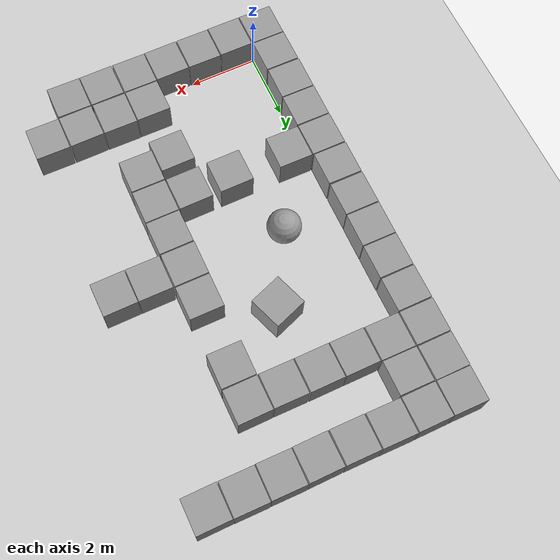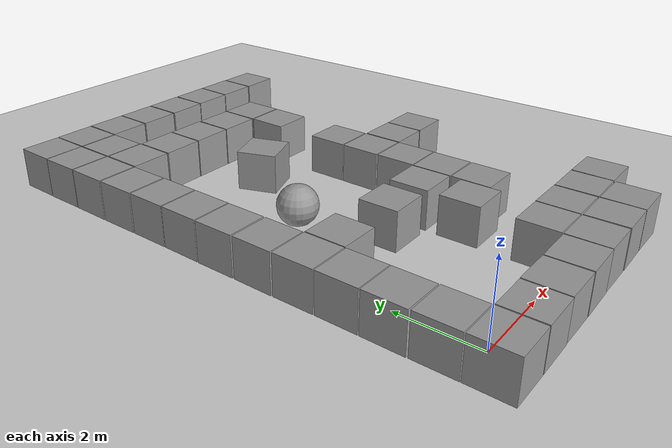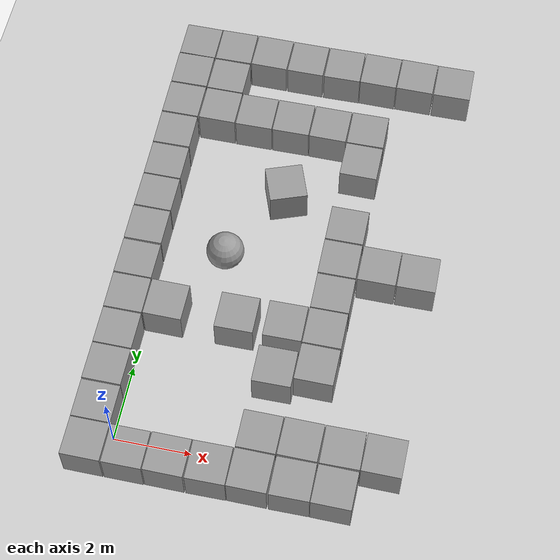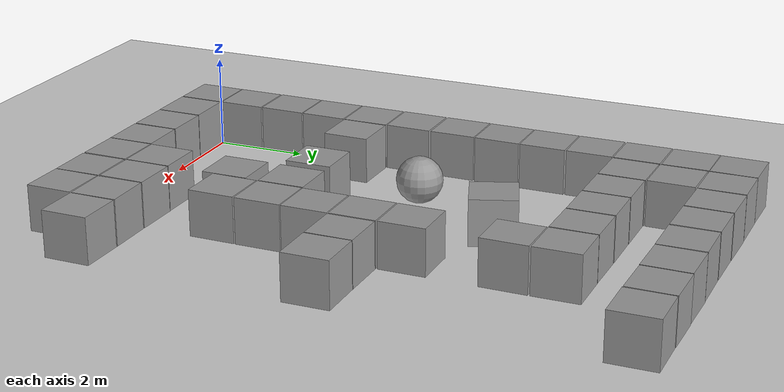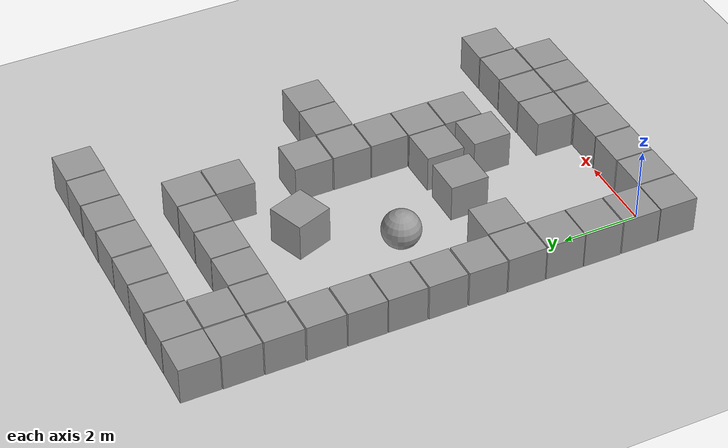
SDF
<sdf version="1.6">
 <world name="tight_mix">
  <include><uri>model://ground_plane</uri></include>
  <include><uri>model://sun</uri></include>
  <model name="unit_box_0">
   <pose>-0.4964 -0.5021 0.5 0 0 -0.00544</pose>
   <link name="link">
    <inertial>
     <mass>1</mass>
     <inertia>
      <ixx>0.166667</ixx>
      <ixy>0</ixy>
      <ixz>0</ixz>
      <iyy>0.166667</iyy>
      <iyz>0</iyz>
      <izz>0.166667</izz>
     </inertia>
    </inertial>
    <collision name="collision"><geometry><box><size>1 1 1</size></box></geometry></collision>
    <visual name="visual">
     <geometry><box><size>1 1 1</size></box></geometry>
     <material>
      <script><uri>file://media/materials/scripts/gazebo.material</uri><name>Gazebo/Grey</name></script>
     </material>
    </visual>
   </link>
  </model>
  <model name="unit_box_1">
   <pose>0.5339 -0.5046 0.5 0 0 -0.00050</pose>
   <link name="link">
    <inertial>
     <mass>1</mass>
     <inertia>
      <ixx>0.166667</ixx>
      <ixy>0</ixy>
      <ixz>0</ixz>
      <iyy>0.166667</iyy>
      <iyz>0</iyz>
      <izz>0.166667</izz>
     </inertia>
    </inertial>
    <collision name="collision"><geometry><box><size>1 1 1</size></box></geometry></collision>
    <visual name="visual">
     <geometry><box><size>1 1 1</size></box></geometry>
     <material>
      <script><uri>file://media/materials/scripts/gazebo.material</uri><name>Gazebo/Grey</name></script>
     </material>
    </visual>
   </link>
  </model>
  <model name="unit_box_2">
   <pose>1.5607 -0.4987 0.5 0 0 -0.00743</pose>
   <link name="link">
    <inertial>
     <mass>1</mass>
     <inertia>
      <ixx>0.166667</ixx>
      <ixy>0</ixy>
      <ixz>0</ixz>
      <iyy>0.166667</iyy>
      <iyz>0</iyz>
      <izz>0.166667</izz>
     </inertia>
    </inertial>
    <collision name="collision"><geometry><box><size>1 1 1</size></box></geometry></collision>
    <visual name="visual">
     <geometry><box><size>1 1 1</size></box></geometry>
     <material>
      <script><uri>file://media/materials/scripts/gazebo.material</uri><name>Gazebo/Grey</name></script>
     </material>
    </visual>
   </link>
  </model>
  <model name="unit_box_3">
   <pose>2.5916 -0.5000 0.5 0 0 0.00735</pose>
   <link name="link">
    <inertial>
     <mass>1</mass>
     <inertia>
      <ixx>0.166667</ixx>
      <ixy>0</ixy>
      <ixz>0</ixz>
      <iyy>0.166667</iyy>
      <iyz>0</iyz>
      <izz>0.166667</izz>
     </inertia>
    </inertial>
    <collision name="collision"><geometry><box><size>1 1 1</size></box></geometry></collision>
    <visual name="visual">
     <geometry><box><size>1 1 1</size></box></geometry>
     <material>
      <script><uri>file://media/materials/scripts/gazebo.material</uri><name>Gazebo/Grey</name></script>
     </material>
    </visual>
   </link>
  </model>
  <model name="unit_box_4">
   <pose>3.6143 -0.4945 0.5 0 0 -0.00686</pose>
   <link name="link">
    <inertial>
     <mass>1</mass>
     <inertia>
      <ixx>0.166667</ixx>
      <ixy>0</ixy>
      <ixz>0</ixz>
      <iyy>0.166667</iyy>
      <iyz>0</iyz>
      <izz>0.166667</izz>
     </inertia>
    </inertial>
    <collision name="collision"><geometry><box><size>1 1 1</size></box></geometry></collision>
    <visual name="visual">
     <geometry><box><size>1 1 1</size></box></geometry>
     <material>
      <script><uri>file://media/materials/scripts/gazebo.material</uri><name>Gazebo/Grey</name></script>
     </material>
    </visual>
   </link>
  </model>
  <model name="unit_box_5">
   <pose>4.6538 -0.4999 0.5 0 0 0.00703</pose>
   <link name="link">
    <inertial>
     <mass>1</mass>
     <inertia>
      <ixx>0.166667</ixx>
      <ixy>0</ixy>
      <ixz>0</ixz>
      <iyy>0.166667</iyy>
      <iyz>0</iyz>
      <izz>0.166667</izz>
     </inertia>
    </inertial>
    <collision name="collision"><geometry><box><size>1 1 1</size></box></geometry></collision>
    <visual name="visual">
     <geometry><box><size>1 1 1</size></box></geometry>
     <material>
      <script><uri>file://media/materials/scripts/gazebo.material</uri><name>Gazebo/Grey</name></script>
     </material>
    </visual>
   </link>
  </model>
  <model name="unit_box_6">
   <pose>5.6762 -0.5021 0.5 0 0 -0.00865</pose>
   <link name="link">
    <inertial>
     <mass>1</mass>
     <inertia>
      <ixx>0.166667</ixx>
      <ixy>0</ixy>
      <ixz>0</ixz>
      <iyy>0.166667</iyy>
      <iyz>0</iyz>
      <izz>0.166667</izz>
     </inertia>
    </inertial>
    <collision name="collision"><geometry><box><size>1 1 1</size></box></geometry></collision>
    <visual name="visual">
     <geometry><box><size>1 1 1</size></box></geometry>
     <material>
      <script><uri>file://media/materials/scripts/gazebo.material</uri><name>Gazebo/Grey</name></script>
     </material>
    </visual>
   </link>
  </model>
  <model name="unit_box_17">
   <pose>-0.4946 11.8604 0.5 0 0 -0.00588</pose>
   <link name="link">
    <inertial>
     <mass>1</mass>
     <inertia>
      <ixx>0.166667</ixx>
      <ixy>0</ixy>
      <ixz>0</ixz>
      <iyy>0.166667</iyy>
      <iyz>0</iyz>
      <izz>0.166667</izz>
     </inertia>
    </inertial>
    <collision name="collision"><geometry><box><size>1 1 1</size></box></geometry></collision>
    <visual name="visual">
     <geometry><box><size>1 1 1</size></box></geometry>
     <material>
      <script><uri>file://media/materials/scripts/gazebo.material</uri><name>Gazebo/Grey</name></script>
     </material>
    </visual>
   </link>
  </model>
  <model name="unit_box_18">
   <pose>0.5297 11.8629 0.5 0 0 0.00562</pose>
   <link name="link">
    <inertial>
     <mass>1</mass>
     <inertia>
      <ixx>0.166667</ixx>
      <ixy>0</ixy>
      <ixz>0</ixz>
      <iyy>0.166667</iyy>
      <iyz>0</iyz>
      <izz>0.166667</izz>
     </inertia>
    </inertial>
    <collision name="collision"><geometry><box><size>1 1 1</size></box></geometry></collision>
    <visual name="visual">
     <geometry><box><size>1 1 1</size></box></geometry>
     <material>
      <script><uri>file://media/materials/scripts/gazebo.material</uri><name>Gazebo/Grey</name></script>
     </material>
    </visual>
   </link>
  </model>
  <model name="unit_box_19">
   <pose>1.5586 11.8654 0.5 0 0 -0.00974</pose>
   <link name="link">
    <inertial>
     <mass>1</mass>
     <inertia>
      <ixx>0.166667</ixx>
      <ixy>0</ixy>
      <ixz>0</ixz>
      <iyy>0.166667</iyy>
      <iyz>0</iyz>
      <izz>0.166667</izz>
     </inertia>
    </inertial>
    <collision name="collision"><geometry><box><size>1 1 1</size></box></geometry></collision>
    <visual name="visual">
     <geometry><box><size>1 1 1</size></box></geometry>
     <material>
      <script><uri>file://media/materials/scripts/gazebo.material</uri><name>Gazebo/Grey</name></script>
     </material>
    </visual>
   </link>
  </model>
  <model name="unit_box_20">
   <pose>2.5899 11.8545 0.5 0 0 -0.00297</pose>
   <link name="link">
    <inertial>
     <mass>1</mass>
     <inertia>
      <ixx>0.166667</ixx>
      <ixy>0</ixy>
      <ixz>0</ixz>
      <iyy>0.166667</iyy>
      <iyz>0</iyz>
      <izz>0.166667</izz>
     </inertia>
    </inertial>
    <collision name="collision"><geometry><box><size>1 1 1</size></box></geometry></collision>
    <visual name="visual">
     <geometry><box><size>1 1 1</size></box></geometry>
     <material>
      <script><uri>file://media/materials/scripts/gazebo.material</uri><name>Gazebo/Grey</name></script>
     </material>
    </visual>
   </link>
  </model>
  <model name="unit_box_21">
   <pose>3.6259 11.8554 0.5 0 0 0.01017</pose>
   <link name="link">
    <inertial>
     <mass>1</mass>
     <inertia>
      <ixx>0.166667</ixx>
      <ixy>0</ixy>
      <ixz>0</ixz>
      <iyy>0.166667</iyy>
      <iyz>0</iyz>
      <izz>0.166667</izz>
     </inertia>
    </inertial>
    <collision name="collision"><geometry><box><size>1 1 1</size></box></geometry></collision>
    <visual name="visual">
     <geometry><box><size>1 1 1</size></box></geometry>
     <material>
      <script><uri>file://media/materials/scripts/gazebo.material</uri><name>Gazebo/Grey</name></script>
     </material>
    </visual>
   </link>
  </model>
  <model name="unit_box_22">
   <pose>4.6549 11.8623 0.5 0 0 -0.00930</pose>
   <link name="link">
    <inertial>
     <mass>1</mass>
     <inertia>
      <ixx>0.166667</ixx>
      <ixy>0</ixy>
      <ixz>0</ixz>
      <iyy>0.166667</iyy>
      <iyz>0</iyz>
      <izz>0.166667</izz>
     </inertia>
    </inertial>
    <collision name="collision"><geometry><box><size>1 1 1</size></box></geometry></collision>
    <visual name="visual">
     <geometry><box><size>1 1 1</size></box></geometry>
     <material>
      <script><uri>file://media/materials/scripts/gazebo.material</uri><name>Gazebo/Grey</name></script>
     </material>
    </visual>
   </link>
  </model>
  <model name="unit_box_23">
   <pose>5.6797 11.8623 0.5 0 0 -0.00848</pose>
   <link name="link">
    <inertial>
     <mass>1</mass>
     <inertia>
      <ixx>0.166667</ixx>
      <ixy>0</ixy>
      <ixz>0</ixz>
      <iyy>0.166667</iyy>
      <iyz>0</iyz>
      <izz>0.166667</izz>
     </inertia>
    </inertial>
    <collision name="collision"><geometry><box><size>1 1 1</size></box></geometry></collision>
    <visual name="visual">
     <geometry><box><size>1 1 1</size></box></geometry>
     <material>
      <script><uri>file://media/materials/scripts/gazebo.material</uri><name>Gazebo/Grey</name></script>
     </material>
    </visual>
   </link>
  </model>
  <model name="unit_box_24">
   <pose>6.7076 11.8551 0.5 0 0 0.00719</pose>
   <link name="link">
    <inertial>
     <mass>1</mass>
     <inertia>
      <ixx>0.166667</ixx>
      <ixy>0</ixy>
      <ixz>0</ixz>
      <iyy>0.166667</iyy>
      <iyz>0</iyz>
      <izz>0.166667</izz>
     </inertia>
    </inertial>
    <collision name="collision"><geometry><box><size>1 1 1</size></box></geometry></collision>
    <visual name="visual">
     <geometry><box><size>1 1 1</size></box></geometry>
     <material>
      <script><uri>file://media/materials/scripts/gazebo.material</uri><name>Gazebo/Grey</name></script>
     </material>
    </visual>
   </link>
  </model>
  <model name="unit_box_34">
   <pose>-0.4975 0.5212 0.5 0 0 -0.00022</pose>
   <link name="link">
    <inertial>
     <mass>1</mass>
     <inertia>
      <ixx>0.166667</ixx>
      <ixy>0</ixy>
      <ixz>0</ixz>
      <iyy>0.166667</iyy>
      <iyz>0</iyz>
      <izz>0.166667</izz>
     </inertia>
    </inertial>
    <collision name="collision"><geometry><box><size>1 1 1</size></box></geometry></collision>
    <visual name="visual">
     <geometry><box><size>1 1 1</size></box></geometry>
     <material>
      <script><uri>file://media/materials/scripts/gazebo.material</uri><name>Gazebo/Grey</name></script>
     </material>
    </visual>
   </link>
  </model>
  <model name="unit_box_35">
   <pose>-0.5028 1.5561 0.5 0 0 -0.00831</pose>
   <link name="link">
    <inertial>
     <mass>1</mass>
     <inertia>
      <ixx>0.166667</ixx>
      <ixy>0</ixy>
      <ixz>0</ixz>
      <iyy>0.166667</iyy>
      <iyz>0</iyz>
      <izz>0.166667</izz>
     </inertia>
    </inertial>
    <collision name="collision"><geometry><box><size>1 1 1</size></box></geometry></collision>
    <visual name="visual">
     <geometry><box><size>1 1 1</size></box></geometry>
     <material>
      <script><uri>file://media/materials/scripts/gazebo.material</uri><name>Gazebo/Grey</name></script>
     </material>
    </visual>
   </link>
  </model>
  <model name="unit_box_36">
   <pose>-0.4985 2.5815 0.5 0 0 -0.00469</pose>
   <link name="link">
    <inertial>
     <mass>1</mass>
     <inertia>
      <ixx>0.166667</ixx>
      <ixy>0</ixy>
      <ixz>0</ixz>
      <iyy>0.166667</iyy>
      <iyz>0</iyz>
      <izz>0.166667</izz>
     </inertia>
    </inertial>
    <collision name="collision"><geometry><box><size>1 1 1</size></box></geometry></collision>
    <visual name="visual">
     <geometry><box><size>1 1 1</size></box></geometry>
     <material>
      <script><uri>file://media/materials/scripts/gazebo.material</uri><name>Gazebo/Grey</name></script>
     </material>
    </visual>
   </link>
  </model>
  <model name="unit_box_37">
   <pose>-0.5006 3.6123 0.5 0 0 0.00192</pose>
   <link name="link">
    <inertial>
     <mass>1</mass>
     <inertia>
      <ixx>0.166667</ixx>
      <ixy>0</ixy>
      <ixz>0</ixz>
      <iyy>0.166667</iyy>
      <iyz>0</iyz>
      <izz>0.166667</izz>
     </inertia>
    </inertial>
    <collision name="collision"><geometry><box><size>1 1 1</size></box></geometry></collision>
    <visual name="visual">
     <geometry><box><size>1 1 1</size></box></geometry>
     <material>
      <script><uri>file://media/materials/scripts/gazebo.material</uri><name>Gazebo/Grey</name></script>
     </material>
    </visual>
   </link>
  </model>
  <model name="unit_box_38">
   <pose>-0.5052 4.6422 0.5 0 0 -0.00751</pose>
   <link name="link">
    <inertial>
     <mass>1</mass>
     <inertia>
      <ixx>0.166667</ixx>
      <ixy>0</ixy>
      <ixz>0</ixz>
      <iyy>0.166667</iyy>
      <iyz>0</iyz>
      <izz>0.166667</izz>
     </inertia>
    </inertial>
    <collision name="collision"><geometry><box><size>1 1 1</size></box></geometry></collision>
    <visual name="visual">
     <geometry><box><size>1 1 1</size></box></geometry>
     <material>
      <script><uri>file://media/materials/scripts/gazebo.material</uri><name>Gazebo/Grey</name></script>
     </material>
    </visual>
   </link>
  </model>
  <model name="unit_box_39">
   <pose>-0.5049 5.6845 0.5 0 0 0.00022</pose>
   <link name="link">
    <inertial>
     <mass>1</mass>
     <inertia>
      <ixx>0.166667</ixx>
      <ixy>0</ixy>
      <ixz>0</ixz>
      <iyy>0.166667</iyy>
      <iyz>0</iyz>
      <izz>0.166667</izz>
     </inertia>
    </inertial>
    <collision name="collision"><geometry><box><size>1 1 1</size></box></geometry></collision>
    <visual name="visual">
     <geometry><box><size>1 1 1</size></box></geometry>
     <material>
      <script><uri>file://media/materials/scripts/gazebo.material</uri><name>Gazebo/Grey</name></script>
     </material>
    </visual>
   </link>
  </model>
  <model name="unit_box_40">
   <pose>-0.4979 6.7153 0.5 0 0 -0.00701</pose>
   <link name="link">
    <inertial>
     <mass>1</mass>
     <inertia>
      <ixx>0.166667</ixx>
      <ixy>0</ixy>
      <ixz>0</ixz>
      <iyy>0.166667</iyy>
      <iyz>0</iyz>
      <izz>0.166667</izz>
     </inertia>
    </inertial>
    <collision name="collision"><geometry><box><size>1 1 1</size></box></geometry></collision>
    <visual name="visual">
     <geometry><box><size>1 1 1</size></box></geometry>
     <material>
      <script><uri>file://media/materials/scripts/gazebo.material</uri><name>Gazebo/Grey</name></script>
     </material>
    </visual>
   </link>
  </model>
  <model name="unit_box_41">
   <pose>-0.4946 7.7426 0.5 0 0 -0.00083</pose>
   <link name="link">
    <inertial>
     <mass>1</mass>
     <inertia>
      <ixx>0.166667</ixx>
      <ixy>0</ixy>
      <ixz>0</ixz>
      <iyy>0.166667</iyy>
      <iyz>0</iyz>
      <izz>0.166667</izz>
     </inertia>
    </inertial>
    <collision name="collision"><geometry><box><size>1 1 1</size></box></geometry></collision>
    <visual name="visual">
     <geometry><box><size>1 1 1</size></box></geometry>
     <material>
      <script><uri>file://media/materials/scripts/gazebo.material</uri><name>Gazebo/Grey</name></script>
     </material>
    </visual>
   </link>
  </model>
  <model name="unit_box_42">
   <pose>-0.5001 8.7783 0.5 0 0 0.00562</pose>
   <link name="link">
    <inertial>
     <mass>1</mass>
     <inertia>
      <ixx>0.166667</ixx>
      <ixy>0</ixy>
      <ixz>0</ixz>
      <iyy>0.166667</iyy>
      <iyz>0</iyz>
      <izz>0.166667</izz>
     </inertia>
    </inertial>
    <collision name="collision"><geometry><box><size>1 1 1</size></box></geometry></collision>
    <visual name="visual">
     <geometry><box><size>1 1 1</size></box></geometry>
     <material>
      <script><uri>file://media/materials/scripts/gazebo.material</uri><name>Gazebo/Grey</name></script>
     </material>
    </visual>
   </link>
  </model>
  <model name="unit_box_43">
   <pose>-0.5037 9.8119 0.5 0 0 -0.00151</pose>
   <link name="link">
    <inertial>
     <mass>1</mass>
     <inertia>
      <ixx>0.166667</ixx>
      <ixy>0</ixy>
      <ixz>0</ixz>
      <iyy>0.166667</iyy>
      <iyz>0</iyz>
      <izz>0.166667</izz>
     </inertia>
    </inertial>
    <collision name="collision"><geometry><box><size>1 1 1</size></box></geometry></collision>
    <visual name="visual">
     <geometry><box><size>1 1 1</size></box></geometry>
     <material>
      <script><uri>file://media/materials/scripts/gazebo.material</uri><name>Gazebo/Grey</name></script>
     </material>
    </visual>
   </link>
  </model>
  <model name="unit_box_44">
   <pose>-0.5030 10.8444 0.5 0 0 0.00779</pose>
   <link name="link">
    <inertial>
     <mass>1</mass>
     <inertia>
      <ixx>0.166667</ixx>
      <ixy>0</ixy>
      <ixz>0</ixz>
      <iyy>0.166667</iyy>
      <iyz>0</iyz>
      <izz>0.166667</izz>
     </inertia>
    </inertial>
    <collision name="collision"><geometry><box><size>1 1 1</size></box></geometry></collision>
    <visual name="visual">
     <geometry><box><size>1 1 1</size></box></geometry>
     <material>
      <script><uri>file://media/materials/scripts/gazebo.material</uri><name>Gazebo/Grey</name></script>
     </material>
    </visual>
   </link>
  </model>
  <model name="unit_box_56">
   <pose>3.6217 0.5339 0.5 0 0 -0.00480</pose>
   <link name="link">
    <inertial>
     <mass>1</mass>
     <inertia>
      <ixx>0.166667</ixx>
      <ixy>0</ixy>
      <ixz>0</ixz>
      <iyy>0.166667</iyy>
      <iyz>0</iyz>
      <izz>0.166667</izz>
     </inertia>
    </inertial>
    <collision name="collision"><geometry><box><size>1 1 1</size></box></geometry></collision>
    <visual name="visual">
     <geometry><box><size>1 1 1</size></box></geometry>
     <material>
      <script><uri>file://media/materials/scripts/gazebo.material</uri><name>Gazebo/Grey</name></script>
     </material>
    </visual>
   </link>
  </model>
  <model name="unit_box_57">
   <pose>4.6459 0.5356 0.5 0 0 -0.00921</pose>
   <link name="link">
    <inertial>
     <mass>1</mass>
     <inertia>
      <ixx>0.166667</ixx>
      <ixy>0</ixy>
      <ixz>0</ixz>
      <iyy>0.166667</iyy>
      <iyz>0</iyz>
      <izz>0.166667</izz>
     </inertia>
    </inertial>
    <collision name="collision"><geometry><box><size>1 1 1</size></box></geometry></collision>
    <visual name="visual">
     <geometry><box><size>1 1 1</size></box></geometry>
     <material>
      <script><uri>file://media/materials/scripts/gazebo.material</uri><name>Gazebo/Grey</name></script>
     </material>
    </visual>
   </link>
  </model>
  <model name="unit_box_58">
   <pose>5.6802 0.5315 0.5 0 0 0.00953</pose>
   <link name="link">
    <inertial>
     <mass>1</mass>
     <inertia>
      <ixx>0.166667</ixx>
      <ixy>0</ixy>
      <ixz>0</ixz>
      <iyy>0.166667</iyy>
      <iyz>0</iyz>
      <izz>0.166667</izz>
     </inertia>
    </inertial>
    <collision name="collision"><geometry><box><size>1 1 1</size></box></geometry></collision>
    <visual name="visual">
     <geometry><box><size>1 1 1</size></box></geometry>
     <material>
      <script><uri>file://media/materials/scripts/gazebo.material</uri><name>Gazebo/Grey</name></script>
     </material>
    </visual>
   </link>
  </model>
  <model name="unit_box_59">
   <pose>6.7050 0.5324 0.5 0 0 -0.00882</pose>
   <link name="link">
    <inertial>
     <mass>1</mass>
     <inertia>
      <ixx>0.166667</ixx>
      <ixy>0</ixy>
      <ixz>0</ixz>
      <iyy>0.166667</iyy>
      <iyz>0</iyz>
      <izz>0.166667</izz>
     </inertia>
    </inertial>
    <collision name="collision"><geometry><box><size>1 1 1</size></box></geometry></collision>
    <visual name="visual">
     <geometry><box><size>1 1 1</size></box></geometry>
     <material>
      <script><uri>file://media/materials/scripts/gazebo.material</uri><name>Gazebo/Grey</name></script>
     </material>
    </visual>
   </link>
  </model>
  <model name="unit_box_60">
   <pose>3.6194 2.3314 0.5 0 0 0.00731</pose>
   <link name="link">
    <inertial>
     <mass>1</mass>
     <inertia>
      <ixx>0.166667</ixx>
      <ixy>0</ixy>
      <ixz>0</ixz>
      <iyy>0.166667</iyy>
      <iyz>0</iyz>
      <izz>0.166667</izz>
     </inertia>
    </inertial>
    <collision name="collision"><geometry><box><size>1 1 1</size></box></geometry></collision>
    <visual name="visual">
     <geometry><box><size>1 1 1</size></box></geometry>
     <material>
      <script><uri>file://media/materials/scripts/gazebo.material</uri><name>Gazebo/Grey</name></script>
     </material>
    </visual>
   </link>
  </model>
  <model name="unit_box_61">
   <pose>4.6446 2.5930 0.5 0 0 -0.00735</pose>
   <link name="link">
    <inertial>
     <mass>1</mass>
     <inertia>
      <ixx>0.166667</ixx>
      <ixy>0</ixy>
      <ixz>0</ixz>
      <iyy>0.166667</iyy>
      <iyz>0</iyz>
      <izz>0.166667</izz>
     </inertia>
    </inertial>
    <collision name="collision"><geometry><box><size>1 1 1</size></box></geometry></collision>
    <visual name="visual">
     <geometry><box><size>1 1 1</size></box></geometry>
     <material>
      <script><uri>file://media/materials/scripts/gazebo.material</uri><name>Gazebo/Grey</name></script>
     </material>
    </visual>
   </link>
  </model>
  <model name="unit_box_63">
   <pose>0.5249 3.6141 0.5 0 0 -0.00981</pose>
   <link name="link">
    <inertial>
     <mass>1</mass>
     <inertia>
      <ixx>0.166667</ixx>
      <ixy>0</ixy>
      <ixz>0</ixz>
      <iyy>0.166667</iyy>
      <iyz>0</iyz>
      <izz>0.166667</izz>
     </inertia>
    </inertial>
    <collision name="collision"><geometry><box><size>1 1 1</size></box></geometry></collision>
    <visual name="visual">
     <geometry><box><size>1 1 1</size></box></geometry>
     <material>
      <script><uri>file://media/materials/scripts/gazebo.material</uri><name>Gazebo/Grey</name></script>
     </material>
    </visual>
   </link>
  </model>
  <model name="unit_box_64">
   <pose>2.3734 3.6145 0.5 0 0 0.00597</pose>
   <link name="link">
    <inertial>
     <mass>1</mass>
     <inertia>
      <ixx>0.166667</ixx>
      <ixy>0</ixy>
      <ixz>0</ixz>
      <iyy>0.166667</iyy>
      <iyz>0</iyz>
      <izz>0.166667</izz>
     </inertia>
    </inertial>
    <collision name="collision"><geometry><box><size>1 1 1</size></box></geometry></collision>
    <visual name="visual">
     <geometry><box><size>1 1 1</size></box></geometry>
     <material>
      <script><uri>file://media/materials/scripts/gazebo.material</uri><name>Gazebo/Grey</name></script>
     </material>
    </visual>
   </link>
  </model>
  <model name="unit_box_65">
   <pose>3.6237 3.6238 0.5 0 0 0.00915</pose>
   <link name="link">
    <inertial>
     <mass>1</mass>
     <inertia>
      <ixx>0.166667</ixx>
      <ixy>0</ixy>
      <ixz>0</ixz>
      <iyy>0.166667</iyy>
      <iyz>0</iyz>
      <izz>0.166667</izz>
     </inertia>
    </inertial>
    <collision name="collision"><geometry><box><size>1 1 1</size></box></geometry></collision>
    <visual name="visual">
     <geometry><box><size>1 1 1</size></box></geometry>
     <material>
      <script><uri>file://media/materials/scripts/gazebo.material</uri><name>Gazebo/Grey</name></script>
     </material>
    </visual>
   </link>
  </model>
  <model name="unit_box_66">
   <pose>4.6516 3.6239 0.5 0 0 0.00090</pose>
   <link name="link">
    <inertial>
     <mass>1</mass>
     <inertia>
      <ixx>0.166667</ixx>
      <ixy>0</ixy>
      <ixz>0</ixz>
      <iyy>0.166667</iyy>
      <iyz>0</iyz>
      <izz>0.166667</izz>
     </inertia>
    </inertial>
    <collision name="collision"><geometry><box><size>1 1 1</size></box></geometry></collision>
    <visual name="visual">
     <geometry><box><size>1 1 1</size></box></geometry>
     <material>
      <script><uri>file://media/materials/scripts/gazebo.material</uri><name>Gazebo/Grey</name></script>
     </material>
    </visual>
   </link>
  </model>
  <model name="unit_box_68">
   <pose>4.6559 4.6487 0.5 0 0 0.00450</pose>
   <link name="link">
    <inertial>
     <mass>1</mass>
     <inertia>
      <ixx>0.166667</ixx>
      <ixy>0</ixy>
      <ixz>0</ixz>
      <iyy>0.166667</iyy>
      <iyz>0</iyz>
      <izz>0.166667</izz>
     </inertia>
    </inertial>
    <collision name="collision"><geometry><box><size>1 1 1</size></box></geometry></collision>
    <visual name="visual">
     <geometry><box><size>1 1 1</size></box></geometry>
     <material>
      <script><uri>file://media/materials/scripts/gazebo.material</uri><name>Gazebo/Grey</name></script>
     </material>
    </visual>
   </link>
  </model>
  <model name="unit_box_69">
   <pose>4.6461 5.6798 0.5 0 0 0.00087</pose>
   <link name="link">
    <inertial>
     <mass>1</mass>
     <inertia>
      <ixx>0.166667</ixx>
      <ixy>0</ixy>
      <ixz>0</ixz>
      <iyy>0.166667</iyy>
      <iyz>0</iyz>
      <izz>0.166667</izz>
     </inertia>
    </inertial>
    <collision name="collision"><geometry><box><size>1 1 1</size></box></geometry></collision>
    <visual name="visual">
     <geometry><box><size>1 1 1</size></box></geometry>
     <material>
      <script><uri>file://media/materials/scripts/gazebo.material</uri><name>Gazebo/Grey</name></script>
     </material>
    </visual>
   </link>
  </model>
  <model name="unit_box_70">
   <pose>5.6832 5.6779 0.5 0 0 -0.00065</pose>
   <link name="link">
    <inertial>
     <mass>1</mass>
     <inertia>
      <ixx>0.166667</ixx>
      <ixy>0</ixy>
      <ixz>0</ixz>
      <iyy>0.166667</iyy>
      <iyz>0</iyz>
      <izz>0.166667</izz>
     </inertia>
    </inertial>
    <collision name="collision"><geometry><box><size>1 1 1</size></box></geometry></collision>
    <visual name="visual">
     <geometry><box><size>1 1 1</size></box></geometry>
     <material>
      <script><uri>file://media/materials/scripts/gazebo.material</uri><name>Gazebo/Grey</name></script>
     </material>
    </visual>
   </link>
  </model>
  <model name="unit_box_71">
   <pose>6.7063 5.6809 0.5 0 0 0.00921</pose>
   <link name="link">
    <inertial>
     <mass>1</mass>
     <inertia>
      <ixx>0.166667</ixx>
      <ixy>0</ixy>
      <ixz>0</ixz>
      <iyy>0.166667</iyy>
      <iyz>0</iyz>
      <izz>0.166667</izz>
     </inertia>
    </inertial>
    <collision name="collision"><geometry><box><size>1 1 1</size></box></geometry></collision>
    <visual name="visual">
     <geometry><box><size>1 1 1</size></box></geometry>
     <material>
      <script><uri>file://media/materials/scripts/gazebo.material</uri><name>Gazebo/Grey</name></script>
     </material>
    </visual>
   </link>
  </model>
  <model name="unit_box_72">
   <pose>4.6486 6.7119 0.5 0 0 0.00119</pose>
   <link name="link">
    <inertial>
     <mass>1</mass>
     <inertia>
      <ixx>0.166667</ixx>
      <ixy>0</ixy>
      <ixz>0</ixz>
      <iyy>0.166667</iyy>
      <iyz>0</iyz>
      <izz>0.166667</izz>
     </inertia>
    </inertial>
    <collision name="collision"><geometry><box><size>1 1 1</size></box></geometry></collision>
    <visual name="visual">
     <geometry><box><size>1 1 1</size></box></geometry>
     <material>
      <script><uri>file://media/materials/scripts/gazebo.material</uri><name>Gazebo/Grey</name></script>
     </material>
    </visual>
   </link>
  </model>
  <model name="unit_box_73">
   <pose>4.6463 8.7724 0.5 0 0 -0.00604</pose>
   <link name="link">
    <inertial>
     <mass>1</mass>
     <inertia>
      <ixx>0.166667</ixx>
      <ixy>0</ixy>
      <ixz>0</ixz>
      <iyy>0.166667</iyy>
      <iyz>0</iyz>
      <izz>0.166667</izz>
     </inertia>
    </inertial>
    <collision name="collision"><geometry><box><size>1 1 1</size></box></geometry></collision>
    <visual name="visual">
     <geometry><box><size>1 1 1</size></box></geometry>
     <material>
      <script><uri>file://media/materials/scripts/gazebo.material</uri><name>Gazebo/Grey</name></script>
     </material>
    </visual>
   </link>
  </model>
  <model name="unit_box_74">
   <pose>0.5314 9.8059 0.5 0 0 -0.00405</pose>
   <link name="link">
    <inertial>
     <mass>1</mass>
     <inertia>
      <ixx>0.166667</ixx>
      <ixy>0</ixy>
      <ixz>0</ixz>
      <iyy>0.166667</iyy>
      <iyz>0</iyz>
      <izz>0.166667</izz>
     </inertia>
    </inertial>
    <collision name="collision"><geometry><box><size>1 1 1</size></box></geometry></collision>
    <visual name="visual">
     <geometry><box><size>1 1 1</size></box></geometry>
     <material>
      <script><uri>file://media/materials/scripts/gazebo.material</uri><name>Gazebo/Grey</name></script>
     </material>
    </visual>
   </link>
  </model>
  <model name="unit_box_75">
   <pose>1.5620 9.7981 0.5 0 0 0.00302</pose>
   <link name="link">
    <inertial>
     <mass>1</mass>
     <inertia>
      <ixx>0.166667</ixx>
      <ixy>0</ixy>
      <ixz>0</ixz>
      <iyy>0.166667</iyy>
      <iyz>0</iyz>
      <izz>0.166667</izz>
     </inertia>
    </inertial>
    <collision name="collision"><geometry><box><size>1 1 1</size></box></geometry></collision>
    <visual name="visual">
     <geometry><box><size>1 1 1</size></box></geometry>
     <material>
      <script><uri>file://media/materials/scripts/gazebo.material</uri><name>Gazebo/Grey</name></script>
     </material>
    </visual>
   </link>
  </model>
  <model name="unit_box_76">
   <pose>2.5863 9.8000 0.5 0 0 0.00597</pose>
   <link name="link">
    <inertial>
     <mass>1</mass>
     <inertia>
      <ixx>0.166667</ixx>
      <ixy>0</ixy>
      <ixz>0</ixz>
      <iyy>0.166667</iyy>
      <iyz>0</iyz>
      <izz>0.166667</izz>
     </inertia>
    </inertial>
    <collision name="collision"><geometry><box><size>1 1 1</size></box></geometry></collision>
    <visual name="visual">
     <geometry><box><size>1 1 1</size></box></geometry>
     <material>
      <script><uri>file://media/materials/scripts/gazebo.material</uri><name>Gazebo/Grey</name></script>
     </material>
    </visual>
   </link>
  </model>
  <model name="unit_box_77">
   <pose>3.6166 9.7983 0.5 0 0 -0.00574</pose>
   <link name="link">
    <inertial>
     <mass>1</mass>
     <inertia>
      <ixx>0.166667</ixx>
      <ixy>0</ixy>
      <ixz>0</ixz>
      <iyy>0.166667</iyy>
      <iyz>0</iyz>
      <izz>0.166667</izz>
     </inertia>
    </inertial>
    <collision name="collision"><geometry><box><size>1 1 1</size></box></geometry></collision>
    <visual name="visual">
     <geometry><box><size>1 1 1</size></box></geometry>
     <material>
      <script><uri>file://media/materials/scripts/gazebo.material</uri><name>Gazebo/Grey</name></script>
     </material>
    </visual>
   </link>
  </model>
  <model name="unit_box_78">
   <pose>4.6459 9.8020 0.5 0 0 0.00694</pose>
   <link name="link">
    <inertial>
     <mass>1</mass>
     <inertia>
      <ixx>0.166667</ixx>
      <ixy>0</ixy>
      <ixz>0</ixz>
      <iyy>0.166667</iyy>
      <iyz>0</iyz>
      <izz>0.166667</izz>
     </inertia>
    </inertial>
    <collision name="collision"><geometry><box><size>1 1 1</size></box></geometry></collision>
    <visual name="visual">
     <geometry><box><size>1 1 1</size></box></geometry>
     <material>
      <script><uri>file://media/materials/scripts/gazebo.material</uri><name>Gazebo/Grey</name></script>
     </material>
    </visual>
   </link>
  </model>
  <model name="unit_box_79">
   <pose>0.5303 10.8294 0.5 0 0 -0.00414</pose>
   <link name="link">
    <inertial>
     <mass>1</mass>
     <inertia>
      <ixx>0.166667</ixx>
      <ixy>0</ixy>
      <ixz>0</ixz>
      <iyy>0.166667</iyy>
      <iyz>0</iyz>
      <izz>0.166667</izz>
     </inertia>
    </inertial>
    <collision name="collision"><geometry><box><size>1 1 1</size></box></geometry></collision>
    <visual name="visual">
     <geometry><box><size>1 1 1</size></box></geometry>
     <material>
      <script><uri>file://media/materials/scripts/gazebo.material</uri><name>Gazebo/Grey</name></script>
     </material>
    </visual>
   </link>
  </model>
  <model name="unit_box_90">
   <pose>2.8000 7.7000 0.5 0 0 0.34907</pose>
   <link name="link">
    <inertial>
     <mass>1</mass>
     <inertia>
      <ixx>0.166667</ixx>
      <ixy>0</ixy>
      <ixz>0</ixz>
      <iyy>0.166667</iyy>
      <iyz>0</iyz>
      <izz>0.166667</izz>
     </inertia>
    </inertial>
    <collision name="collision"><geometry><box><size>1 1 1</size></box></geometry></collision>
    <visual name="visual">
     <geometry><box><size>1 1 1</size></box></geometry>
     <material>
      <script><uri>file://media/materials/scripts/gazebo.material</uri><name>Gazebo/Grey</name></script>
     </material>
    </visual>
   </link>
  </model>
  <model name="unit_sphere_0">
   <pose>1.6000 5.6000 0.5 0 0 0.00000</pose>
   <link name="link">
    <inertial>
     <mass>1</mass>
     <inertia>
      <ixx>0.166667</ixx>
      <ixy>0</ixy>
      <ixz>0</ixz>
      <iyy>0.166667</iyy>
      <iyz>0</iyz>
      <izz>0.166667</izz>
     </inertia>
    </inertial>
    <collision name="collision"><geometry><sphere><radius>0.5</radius></sphere></geometry></collision>
    <visual name="visual">
     <geometry><sphere><radius>0.5</radius></sphere></geometry>
     <material>
      <script><uri>file://media/materials/scripts/gazebo.material</uri><name>Gazebo/Grey</name></script>
     </material>
    </visual>
   </link>
  </model>
 </world>
</sdf>
